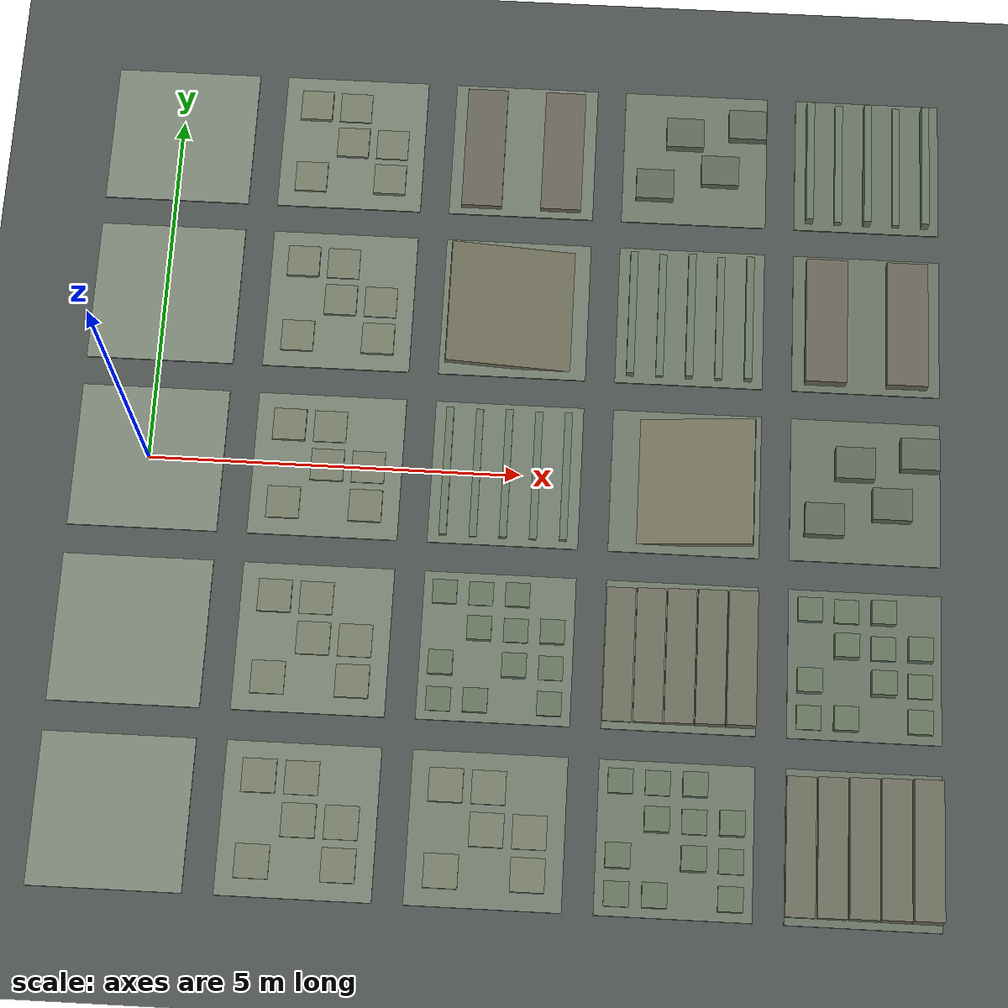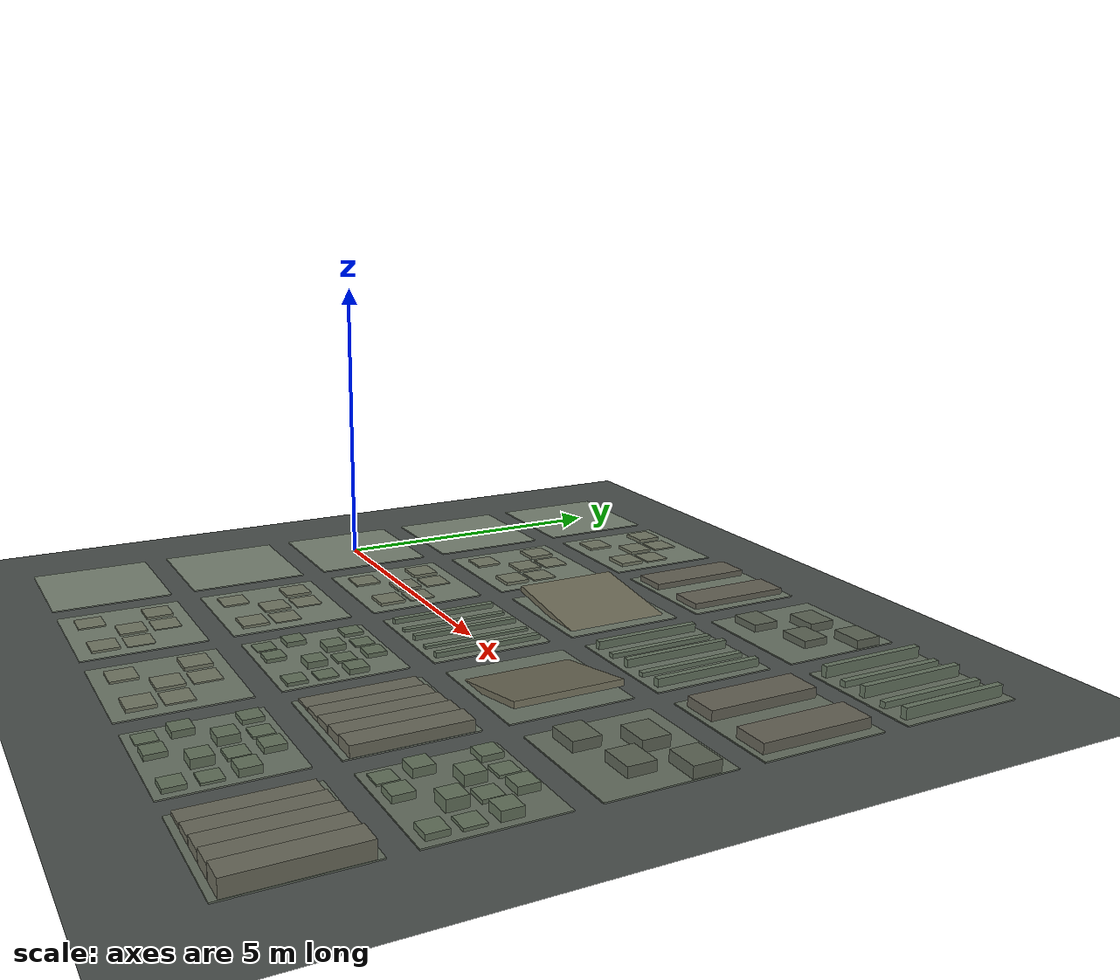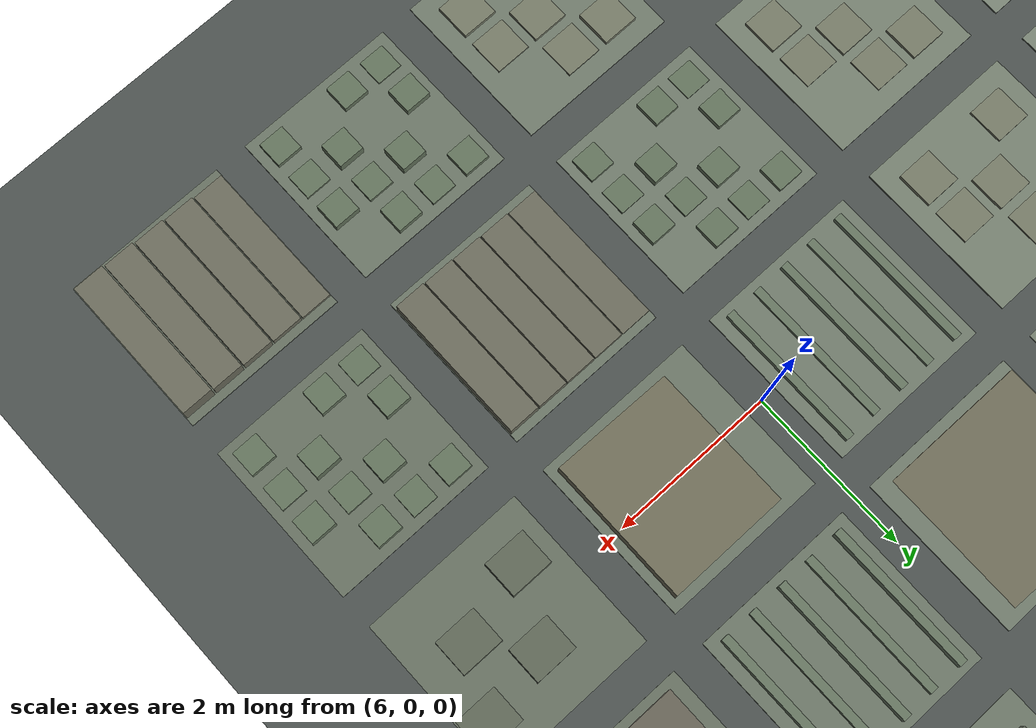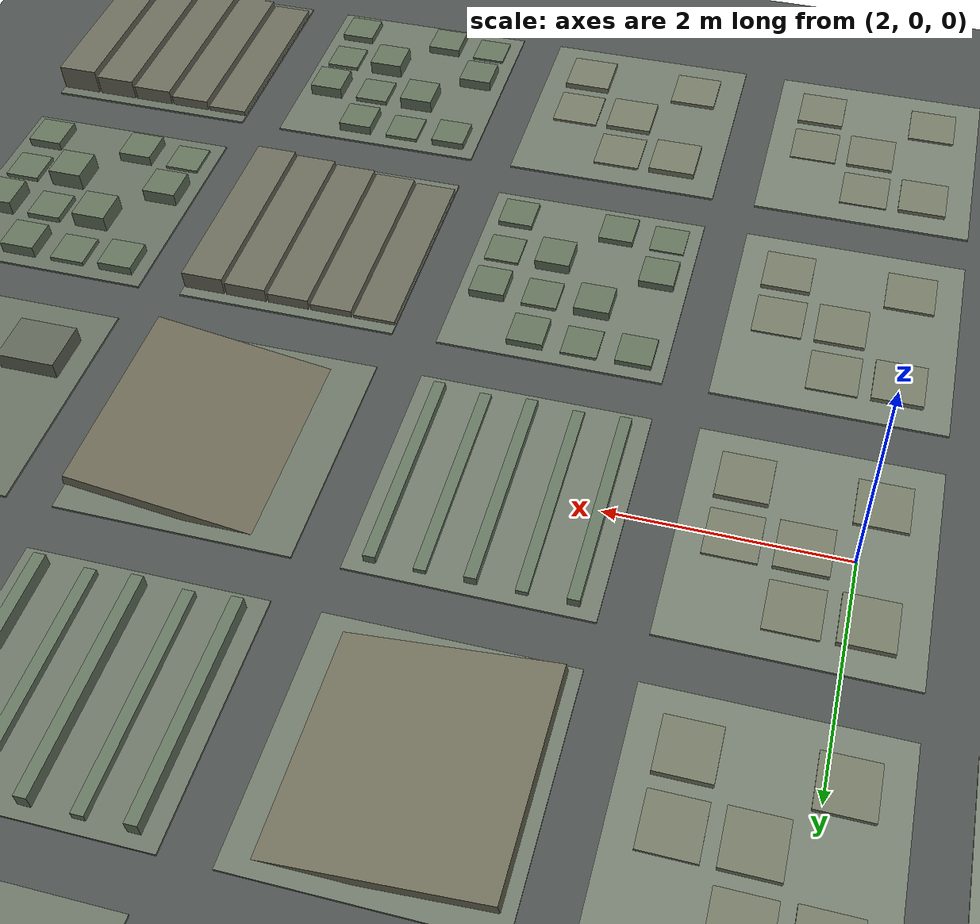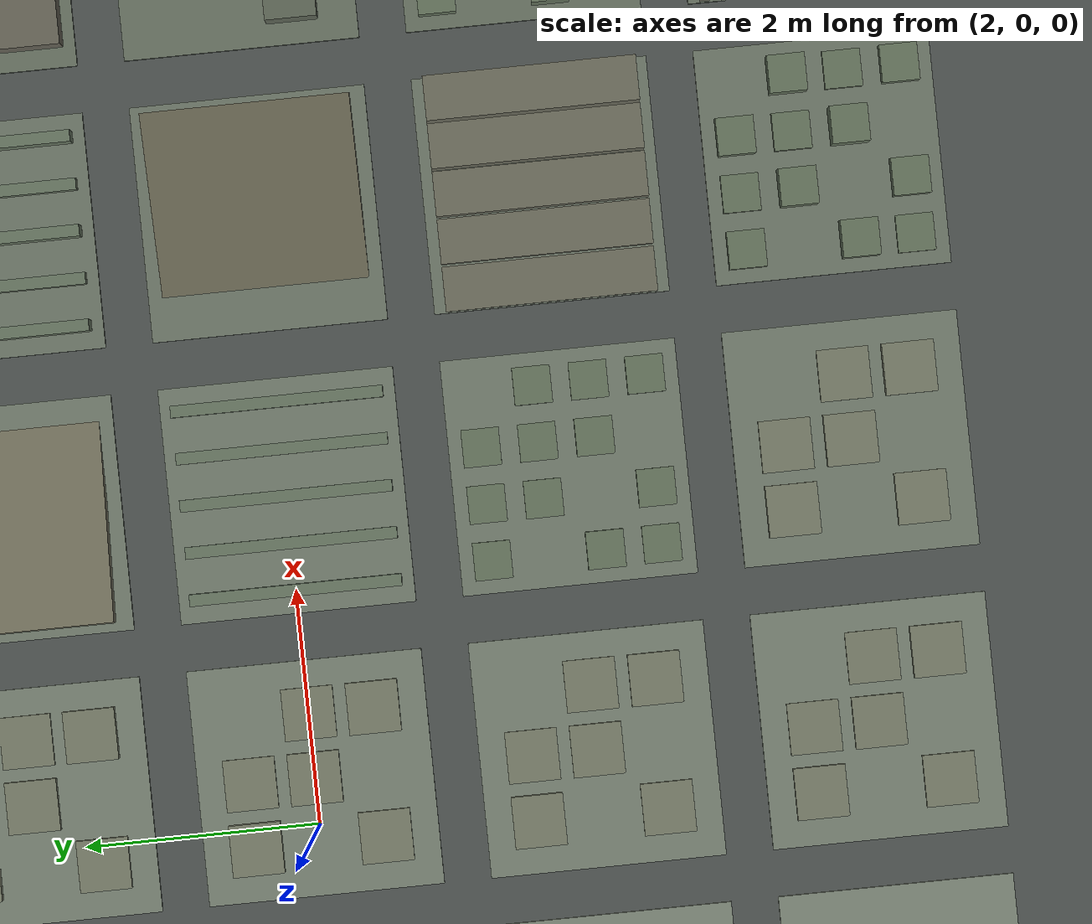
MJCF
<?xml version='1.0' encoding='utf-8'?>
<mujoco model="mjlab_rough_5x5_terrain">
  <option gravity="0 0 -9.81" timestep="0.005" />
  <asset>
    <material name="tile_mat" rgba="0.45 0.47 0.42 1" />
    <material name="floor_mat" rgba="0.30 0.32 0.31 1" />
  </asset>
  <worldbody>
    <light name="terrain_light" pos="3 -4 8" dir="-0.4 0.4 -1" diffuse="0.8 0.8 0.8" specular="0.2 0.2 0.2" />
    <geom name="terrain_floor" type="plane" pos="4.8 0 0" size="9 8 0.02" friction="0.9 0.005 0.0001" contype="1" conaffinity="1" material="floor_mat" />
    <geom name="terrain_r0_c0_base" type="box" pos="0 -4.8 0.01" size="1 1 0.01" friction="0.9 0.005 0.0001" contype="1" conaffinity="1" material="tile_mat" rgba="0.48 0.52 0.46 1" />
    <geom name="terrain_r0_c1_base" type="box" pos="0 -2.4 0.01" size="1 1 0.01" friction="0.9 0.005 0.0001" contype="1" conaffinity="1" material="tile_mat" rgba="0.48 0.52 0.46 1" />
    <geom name="terrain_r0_c2_base" type="box" pos="0 0 0.01" size="1 1 0.01" friction="0.9 0.005 0.0001" contype="1" conaffinity="1" material="tile_mat" rgba="0.48 0.52 0.46 1" />
    <geom name="terrain_r0_c3_base" type="box" pos="0 2.4 0.01" size="1 1 0.01" friction="0.9 0.005 0.0001" contype="1" conaffinity="1" material="tile_mat" rgba="0.48 0.52 0.46 1" />
    <geom name="terrain_r0_c4_base" type="box" pos="0 4.8 0.01" size="1 1 0.01" friction="0.9 0.005 0.0001" contype="1" conaffinity="1" material="tile_mat" rgba="0.48 0.52 0.46 1" />
    <geom name="terrain_r1_c0_base" type="box" pos="2.4 -4.8 0.01" size="1 1 0.01" friction="0.9 0.005 0.0001" contype="1" conaffinity="1" material="tile_mat" rgba="0.46 0.50 0.44 1" />
    <geom name="terrain_r1_c1_base" type="box" pos="2.4 -2.4 0.01" size="1 1 0.01" friction="0.9 0.005 0.0001" contype="1" conaffinity="1" material="tile_mat" rgba="0.46 0.50 0.44 1" />
    <geom name="terrain_r1_c2_base" type="box" pos="2.4 0 0.01" size="1 1 0.01" friction="0.9 0.005 0.0001" contype="1" conaffinity="1" material="tile_mat" rgba="0.46 0.50 0.44 1" />
    <geom name="terrain_r1_c3_base" type="box" pos="2.4 2.4 0.01" size="1 1 0.01" friction="0.9 0.005 0.0001" contype="1" conaffinity="1" material="tile_mat" rgba="0.46 0.50 0.44 1" />
    <geom name="terrain_r1_c4_base" type="box" pos="2.4 4.8 0.01" size="1 1 0.01" friction="0.9 0.005 0.0001" contype="1" conaffinity="1" material="tile_mat" rgba="0.46 0.50 0.44 1" />
    <geom name="terrain_r2_c0_base" type="box" pos="4.8 -4.8 0.01" size="1 1 0.01" friction="0.9 0.005 0.0001" contype="1" conaffinity="1" material="tile_mat" rgba="0.44 0.48 0.42 1" />
    <geom name="terrain_r2_c1_base" type="box" pos="4.8 -2.4 0.01" size="1 1 0.01" friction="0.9 0.005 0.0001" contype="1" conaffinity="1" material="tile_mat" rgba="0.44 0.48 0.42 1" />
    <geom name="terrain_r2_c2_base" type="box" pos="4.8 0 0.01" size="1 1 0.01" friction="0.9 0.005 0.0001" contype="1" conaffinity="1" material="tile_mat" rgba="0.44 0.48 0.42 1" />
    <geom name="terrain_r2_c3_base" type="box" pos="4.8 2.4 0.01" size="1 1 0.01" friction="0.9 0.005 0.0001" contype="1" conaffinity="1" material="tile_mat" rgba="0.44 0.48 0.42 1" />
    <geom name="terrain_r2_c4_base" type="box" pos="4.8 4.8 0.01" size="1 1 0.01" friction="0.9 0.005 0.0001" contype="1" conaffinity="1" material="tile_mat" rgba="0.44 0.48 0.42 1" />
    <geom name="terrain_r3_c0_base" type="box" pos="7.2 -4.8 0.01" size="1 1 0.01" friction="0.9 0.005 0.0001" contype="1" conaffinity="1" material="tile_mat" rgba="0.42 0.46 0.40 1" />
    <geom name="terrain_r3_c1_base" type="box" pos="7.2 -2.4 0.01" size="1 1 0.01" friction="0.9 0.005 0.0001" contype="1" conaffinity="1" material="tile_mat" rgba="0.42 0.46 0.40 1" />
    <geom name="terrain_r3_c2_base" type="box" pos="7.2 0 0.01" size="1 1 0.01" friction="0.9 0.005 0.0001" contype="1" conaffinity="1" material="tile_mat" rgba="0.42 0.46 0.40 1" />
    <geom name="terrain_r3_c3_base" type="box" pos="7.2 2.4 0.01" size="1 1 0.01" friction="0.9 0.005 0.0001" contype="1" conaffinity="1" material="tile_mat" rgba="0.42 0.46 0.40 1" />
    <geom name="terrain_r3_c4_base" type="box" pos="7.2 4.8 0.01" size="1 1 0.01" friction="0.9 0.005 0.0001" contype="1" conaffinity="1" material="tile_mat" rgba="0.42 0.46 0.40 1" />
    <geom name="terrain_r4_c0_base" type="box" pos="9.6 -4.8 0.01" size="1 1 0.01" friction="0.9 0.005 0.0001" contype="1" conaffinity="1" material="tile_mat" rgba="0.40 0.44 0.38 1" />
    <geom name="terrain_r4_c1_base" type="box" pos="9.6 -2.4 0.01" size="1 1 0.01" friction="0.9 0.005 0.0001" contype="1" conaffinity="1" material="tile_mat" rgba="0.40 0.44 0.38 1" />
    <geom name="terrain_r4_c2_base" type="box" pos="9.6 0 0.01" size="1 1 0.01" friction="0.9 0.005 0.0001" contype="1" conaffinity="1" material="tile_mat" rgba="0.40 0.44 0.38 1" />
    <geom name="terrain_r4_c3_base" type="box" pos="9.6 2.4 0.01" size="1 1 0.01" friction="0.9 0.005 0.0001" contype="1" conaffinity="1" material="tile_mat" rgba="0.40 0.44 0.38 1" />
    <geom name="terrain_r4_c4_base" type="box" pos="9.6 4.8 0.01" size="1 1 0.01" friction="0.9 0.005 0.0001" contype="1" conaffinity="1" material="tile_mat" rgba="0.40 0.44 0.38 1" />
    <geom name="terrain_r1_c0_low_block_0_0" type="box" pos="1.85 -5.35 0.03125" size="0.22 0.22 0.01125" friction="0.9 0.005 0.0001" contype="1" conaffinity="1" material="tile_mat" rgba="0.46 0.48 0.40 1" />
    <geom name="terrain_r1_c0_low_block_0_2" type="box" pos="1.85 -4.25 0.03875" size="0.22 0.22 0.01875" friction="0.9 0.005 0.0001" contype="1" conaffinity="1" material="tile_mat" rgba="0.46 0.48 0.40 1" />
    <geom name="terrain_r1_c0_low_block_1_1" type="box" pos="2.4 -4.8 0.035" size="0.22 0.22 0.015" friction="0.9 0.005 0.0001" contype="1" conaffinity="1" material="tile_mat" rgba="0.46 0.48 0.40 1" />
    <geom name="terrain_r1_c0_low_block_1_2" type="box" pos="2.4 -4.25 0.0275" size="0.22 0.22 0.0075" friction="0.9 0.005 0.0001" contype="1" conaffinity="1" material="tile_mat" rgba="0.46 0.48 0.40 1" />
    <geom name="terrain_r1_c0_low_block_2_0" type="box" pos="2.95 -5.35 0.03875" size="0.22 0.22 0.01875" friction="0.9 0.005 0.0001" contype="1" conaffinity="1" material="tile_mat" rgba="0.46 0.48 0.40 1" />
    <geom name="terrain_r1_c0_low_block_2_1" type="box" pos="2.95 -4.8 0.0275" size="0.22 0.22 0.0075" friction="0.9 0.005 0.0001" contype="1" conaffinity="1" material="tile_mat" rgba="0.46 0.48 0.40 1" />
    <geom name="terrain_r1_c1_low_block_0_0" type="box" pos="1.85 -2.95 0.03305" size="0.22 0.22 0.01305" friction="0.9 0.005 0.0001" contype="1" conaffinity="1" material="tile_mat" rgba="0.46 0.48 0.40 1" />
    <geom name="terrain_r1_c1_low_block_0_2" type="box" pos="1.85 -1.85 0.04175" size="0.22 0.22 0.02175" friction="0.9 0.005 0.0001" contype="1" conaffinity="1" material="tile_mat" rgba="0.46 0.48 0.40 1" />
    <geom name="terrain_r1_c1_low_block_1_1" type="box" pos="2.4 -2.4 0.0374" size="0.22 0.22 0.0174" friction="0.9 0.005 0.0001" contype="1" conaffinity="1" material="tile_mat" rgba="0.46 0.48 0.40 1" />
    <geom name="terrain_r1_c1_low_block_1_2" type="box" pos="2.4 -1.85 0.0287" size="0.22 0.22 0.0087" friction="0.9 0.005 0.0001" contype="1" conaffinity="1" material="tile_mat" rgba="0.46 0.48 0.40 1" />
    <geom name="terrain_r1_c1_low_block_2_0" type="box" pos="2.95 -2.95 0.04175" size="0.22 0.22 0.02175" friction="0.9 0.005 0.0001" contype="1" conaffinity="1" material="tile_mat" rgba="0.46 0.48 0.40 1" />
    <geom name="terrain_r1_c1_low_block_2_1" type="box" pos="2.95 -2.4 0.0287" size="0.22 0.22 0.0087" friction="0.9 0.005 0.0001" contype="1" conaffinity="1" material="tile_mat" rgba="0.46 0.48 0.40 1" />
    <geom name="terrain_r1_c2_low_block_0_0" type="box" pos="1.85 -0.55 0.03485" size="0.22 0.22 0.01485" friction="0.9 0.005 0.0001" contype="1" conaffinity="1" material="tile_mat" rgba="0.46 0.48 0.40 1" />
    <geom name="terrain_r1_c2_low_block_0_2" type="box" pos="1.85 0.55 0.04475" size="0.22 0.22 0.02475" friction="0.9 0.005 0.0001" contype="1" conaffinity="1" material="tile_mat" rgba="0.46 0.48 0.40 1" />
    <geom name="terrain_r1_c2_low_block_1_1" type="box" pos="2.4 0 0.0398" size="0.22 0.22 0.0198" friction="0.9 0.005 0.0001" contype="1" conaffinity="1" material="tile_mat" rgba="0.46 0.48 0.40 1" />
    <geom name="terrain_r1_c2_low_block_1_2" type="box" pos="2.4 0.55 0.0299" size="0.22 0.22 0.0099" friction="0.9 0.005 0.0001" contype="1" conaffinity="1" material="tile_mat" rgba="0.46 0.48 0.40 1" />
    <geom name="terrain_r1_c2_low_block_2_0" type="box" pos="2.95 -0.55 0.04475" size="0.22 0.22 0.02475" friction="0.9 0.005 0.0001" contype="1" conaffinity="1" material="tile_mat" rgba="0.46 0.48 0.40 1" />
    <geom name="terrain_r1_c2_low_block_2_1" type="box" pos="2.95 0 0.0299" size="0.22 0.22 0.0099" friction="0.9 0.005 0.0001" contype="1" conaffinity="1" material="tile_mat" rgba="0.46 0.48 0.40 1" />
    <geom name="terrain_r1_c3_low_block_0_0" type="box" pos="1.85 1.85 0.03665" size="0.22 0.22 0.01665" friction="0.9 0.005 0.0001" contype="1" conaffinity="1" material="tile_mat" rgba="0.46 0.48 0.40 1" />
    <geom name="terrain_r1_c3_low_block_0_2" type="box" pos="1.85 2.95 0.04775" size="0.22 0.22 0.02775" friction="0.9 0.005 0.0001" contype="1" conaffinity="1" material="tile_mat" rgba="0.46 0.48 0.40 1" />
    <geom name="terrain_r1_c3_low_block_1_1" type="box" pos="2.4 2.4 0.0422" size="0.22 0.22 0.0222" friction="0.9 0.005 0.0001" contype="1" conaffinity="1" material="tile_mat" rgba="0.46 0.48 0.40 1" />
    <geom name="terrain_r1_c3_low_block_1_2" type="box" pos="2.4 2.95 0.0311" size="0.22 0.22 0.0111" friction="0.9 0.005 0.0001" contype="1" conaffinity="1" material="tile_mat" rgba="0.46 0.48 0.40 1" />
    <geom name="terrain_r1_c3_low_block_2_0" type="box" pos="2.95 1.85 0.04775" size="0.22 0.22 0.02775" friction="0.9 0.005 0.0001" contype="1" conaffinity="1" material="tile_mat" rgba="0.46 0.48 0.40 1" />
    <geom name="terrain_r1_c3_low_block_2_1" type="box" pos="2.95 2.4 0.0311" size="0.22 0.22 0.0111" friction="0.9 0.005 0.0001" contype="1" conaffinity="1" material="tile_mat" rgba="0.46 0.48 0.40 1" />
    <geom name="terrain_r1_c4_low_block_0_0" type="box" pos="1.85 4.25 0.03845" size="0.22 0.22 0.01845" friction="0.9 0.005 0.0001" contype="1" conaffinity="1" material="tile_mat" rgba="0.46 0.48 0.40 1" />
    <geom name="terrain_r1_c4_low_block_0_2" type="box" pos="1.85 5.35 0.05075" size="0.22 0.22 0.03075" friction="0.9 0.005 0.0001" contype="1" conaffinity="1" material="tile_mat" rgba="0.46 0.48 0.40 1" />
    <geom name="terrain_r1_c4_low_block_1_1" type="box" pos="2.4 4.8 0.0446" size="0.22 0.22 0.0246" friction="0.9 0.005 0.0001" contype="1" conaffinity="1" material="tile_mat" rgba="0.46 0.48 0.40 1" />
    <geom name="terrain_r1_c4_low_block_1_2" type="box" pos="2.4 5.35 0.0323" size="0.22 0.22 0.0123" friction="0.9 0.005 0.0001" contype="1" conaffinity="1" material="tile_mat" rgba="0.46 0.48 0.40 1" />
    <geom name="terrain_r1_c4_low_block_2_0" type="box" pos="2.95 4.25 0.05075" size="0.22 0.22 0.03075" friction="0.9 0.005 0.0001" contype="1" conaffinity="1" material="tile_mat" rgba="0.46 0.48 0.40 1" />
    <geom name="terrain_r1_c4_low_block_2_1" type="box" pos="2.95 4.8 0.0323" size="0.22 0.22 0.0123" friction="0.9 0.005 0.0001" contype="1" conaffinity="1" material="tile_mat" rgba="0.46 0.48 0.40 1" />
    <geom name="terrain_r2_c0_low_block_0_0" type="box" pos="4.25 -5.35 0.03725" size="0.22 0.22 0.01725" friction="0.9 0.005 0.0001" contype="1" conaffinity="1" material="tile_mat" rgba="0.46 0.48 0.40 1" />
    <geom name="terrain_r2_c0_low_block_0_2" type="box" pos="4.25 -4.25 0.04875" size="0.22 0.22 0.02875" friction="0.9 0.005 0.0001" contype="1" conaffinity="1" material="tile_mat" rgba="0.46 0.48 0.40 1" />
    <geom name="terrain_r2_c0_low_block_1_1" type="box" pos="4.8 -4.8 0.043" size="0.22 0.22 0.023" friction="0.9 0.005 0.0001" contype="1" conaffinity="1" material="tile_mat" rgba="0.46 0.48 0.40 1" />
    <geom name="terrain_r2_c0_low_block_1_2" type="box" pos="4.8 -4.25 0.0315" size="0.22 0.22 0.0115" friction="0.9 0.005 0.0001" contype="1" conaffinity="1" material="tile_mat" rgba="0.46 0.48 0.40 1" />
    <geom name="terrain_r2_c0_low_block_2_0" type="box" pos="5.35 -5.35 0.04875" size="0.22 0.22 0.02875" friction="0.9 0.005 0.0001" contype="1" conaffinity="1" material="tile_mat" rgba="0.46 0.48 0.40 1" />
    <geom name="terrain_r2_c0_low_block_2_1" type="box" pos="5.35 -4.8 0.0315" size="0.22 0.22 0.0115" friction="0.9 0.005 0.0001" contype="1" conaffinity="1" material="tile_mat" rgba="0.46 0.48 0.40 1" />
    <geom name="terrain_r2_c1_rough_block_0_0" type="box" pos="4.08 -3.12 0.0285" size="0.16 0.16 0.0085" friction="0.9 0.005 0.0001" contype="1" conaffinity="1" material="tile_mat" rgba="0.39 0.45 0.36 1" />
    <geom name="terrain_r2_c1_rough_block_0_1" type="box" pos="4.08 -2.64 0.05825" size="0.16 0.16 0.03825" friction="0.9 0.005 0.0001" contype="1" conaffinity="1" material="tile_mat" rgba="0.39 0.45 0.36 1" />
    <geom name="terrain_r2_c1_rough_block_0_3" type="box" pos="4.08 -1.68 0.0455" size="0.16 0.16 0.0255" friction="0.9 0.005 0.0001" contype="1" conaffinity="1" material="tile_mat" rgba="0.39 0.45 0.36 1" />
    <geom name="terrain_r2_c1_rough_block_1_0" type="box" pos="4.56 -3.12 0.04975" size="0.16 0.16 0.02975" friction="0.9 0.005 0.0001" contype="1" conaffinity="1" material="tile_mat" rgba="0.39 0.45 0.36 1" />
    <geom name="terrain_r2_c1_rough_block_1_2" type="box" pos="4.56 -2.16 0.06675" size="0.16 0.16 0.04675" friction="0.9 0.005 0.0001" contype="1" conaffinity="1" material="tile_mat" rgba="0.39 0.45 0.36 1" />
    <geom name="terrain_r2_c1_rough_block_1_3" type="box" pos="4.56 -1.68 0.03275" size="0.16 0.16 0.01275" friction="0.9 0.005 0.0001" contype="1" conaffinity="1" material="tile_mat" rgba="0.39 0.45 0.36 1" />
    <geom name="terrain_r2_c1_rough_block_2_1" type="box" pos="5.04 -2.64 0.071" size="0.16 0.16 0.051" friction="0.9 0.005 0.0001" contype="1" conaffinity="1" material="tile_mat" rgba="0.39 0.45 0.36 1" />
    <geom name="terrain_r2_c1_rough_block_2_2" type="box" pos="5.04 -2.16 0.037" size="0.16 0.16 0.017" friction="0.9 0.005 0.0001" contype="1" conaffinity="1" material="tile_mat" rgba="0.39 0.45 0.36 1" />
    <geom name="terrain_r2_c1_rough_block_2_3" type="box" pos="5.04 -1.68 0.054" size="0.16 0.16 0.034" friction="0.9 0.005 0.0001" contype="1" conaffinity="1" material="tile_mat" rgba="0.39 0.45 0.36 1" />
    <geom name="terrain_r2_c1_rough_block_3_0" type="box" pos="5.52 -3.12 0.0455" size="0.16 0.16 0.0255" friction="0.9 0.005 0.0001" contype="1" conaffinity="1" material="tile_mat" rgba="0.39 0.45 0.36 1" />
    <geom name="terrain_r2_c1_rough_block_3_1" type="box" pos="5.52 -2.64 0.03275" size="0.16 0.16 0.01275" friction="0.9 0.005 0.0001" contype="1" conaffinity="1" material="tile_mat" rgba="0.39 0.45 0.36 1" />
    <geom name="terrain_r2_c1_rough_block_3_2" type="box" pos="5.52 -2.16 0.0625" size="0.16 0.16 0.0425" friction="0.9 0.005 0.0001" contype="1" conaffinity="1" material="tile_mat" rgba="0.39 0.45 0.36 1" />
    <geom name="terrain_r2_c2_wave_0" type="box" pos="4 0 0.06" size="0.05 0.9 0.04" friction="0.9 0.005 0.0001" contype="1" conaffinity="1" material="tile_mat" rgba="0.40 0.46 0.38 1" />
    <geom name="terrain_r2_c2_wave_1" type="box" pos="4.4 0 0.042" size="0.05 0.9 0.022" friction="0.9 0.005 0.0001" contype="1" conaffinity="1" material="tile_mat" rgba="0.40 0.46 0.38 1" />
    <geom name="terrain_r2_c2_wave_2" type="box" pos="4.8 0 0.06" size="0.05 0.9 0.04" friction="0.9 0.005 0.0001" contype="1" conaffinity="1" material="tile_mat" rgba="0.40 0.46 0.38 1" />
    <geom name="terrain_r2_c2_wave_3" type="box" pos="5.2 0 0.042" size="0.05 0.9 0.022" friction="0.9 0.005 0.0001" contype="1" conaffinity="1" material="tile_mat" rgba="0.40 0.46 0.38 1" />
    <geom name="terrain_r2_c2_wave_4" type="box" pos="5.6 0 0.06" size="0.05 0.9 0.04" friction="0.9 0.005 0.0001" contype="1" conaffinity="1" material="tile_mat" rgba="0.40 0.46 0.38 1" />
    <geom name="terrain_r2_c3_ramp" type="box" pos="4.8 2.4 0.08" size="0.92 0.88 0.05" friction="0.9 0.005 0.0001" contype="1" conaffinity="1" material="tile_mat" rgba="0.44 0.43 0.35 1" quat="0.997564 0 0.0697565 0" />
    <geom name="terrain_r2_c4_gap_left" type="box" pos="4.25 4.8 0.07" size="0.28 0.9 0.05" friction="0.9 0.005 0.0001" contype="1" conaffinity="1" material="tile_mat" rgba="0.40 0.39 0.34 1" />
    <geom name="terrain_r2_c4_gap_right" type="box" pos="5.35 4.8 0.07" size="0.28 0.9 0.05" friction="0.9 0.005 0.0001" contype="1" conaffinity="1" material="tile_mat" rgba="0.40 0.39 0.34 1" />
    <geom name="terrain_r3_c0_rough_block_0_0" type="box" pos="6.48 -5.52 0.0315" size="0.16 0.16 0.0115" friction="0.9 0.005 0.0001" contype="1" conaffinity="1" material="tile_mat" rgba="0.39 0.45 0.36 1" />
    <geom name="terrain_r3_c0_rough_block_0_1" type="box" pos="6.48 -5.04 0.07175" size="0.16 0.16 0.05175" friction="0.9 0.005 0.0001" contype="1" conaffinity="1" material="tile_mat" rgba="0.39 0.45 0.36 1" />
    <geom name="terrain_r3_c0_rough_block_0_3" type="box" pos="6.48 -4.08 0.0545" size="0.16 0.16 0.0345" friction="0.9 0.005 0.0001" contype="1" conaffinity="1" material="tile_mat" rgba="0.39 0.45 0.36 1" />
    <geom name="terrain_r3_c0_rough_block_1_0" type="box" pos="6.96 -5.52 0.06025" size="0.16 0.16 0.04025" friction="0.9 0.005 0.0001" contype="1" conaffinity="1" material="tile_mat" rgba="0.39 0.45 0.36 1" />
    <geom name="terrain_r3_c0_rough_block_1_2" type="box" pos="6.96 -4.56 0.08325" size="0.16 0.16 0.06325" friction="0.9 0.005 0.0001" contype="1" conaffinity="1" material="tile_mat" rgba="0.39 0.45 0.36 1" />
    <geom name="terrain_r3_c0_rough_block_1_3" type="box" pos="6.96 -4.08 0.03725" size="0.16 0.16 0.01725" friction="0.9 0.005 0.0001" contype="1" conaffinity="1" material="tile_mat" rgba="0.39 0.45 0.36 1" />
    <geom name="terrain_r3_c0_rough_block_2_1" type="box" pos="7.44 -5.04 0.089" size="0.16 0.16 0.069" friction="0.9 0.005 0.0001" contype="1" conaffinity="1" material="tile_mat" rgba="0.39 0.45 0.36 1" />
    <geom name="terrain_r3_c0_rough_block_2_2" type="box" pos="7.44 -4.56 0.043" size="0.16 0.16 0.023" friction="0.9 0.005 0.0001" contype="1" conaffinity="1" material="tile_mat" rgba="0.39 0.45 0.36 1" />
    <geom name="terrain_r3_c0_rough_block_2_3" type="box" pos="7.44 -4.08 0.066" size="0.16 0.16 0.046" friction="0.9 0.005 0.0001" contype="1" conaffinity="1" material="tile_mat" rgba="0.39 0.45 0.36 1" />
    <geom name="terrain_r3_c0_rough_block_3_0" type="box" pos="7.92 -5.52 0.0545" size="0.16 0.16 0.0345" friction="0.9 0.005 0.0001" contype="1" conaffinity="1" material="tile_mat" rgba="0.39 0.45 0.36 1" />
    <geom name="terrain_r3_c0_rough_block_3_1" type="box" pos="7.92 -5.04 0.03725" size="0.16 0.16 0.01725" friction="0.9 0.005 0.0001" contype="1" conaffinity="1" material="tile_mat" rgba="0.39 0.45 0.36 1" />
    <geom name="terrain_r3_c0_rough_block_3_2" type="box" pos="7.92 -4.56 0.0775" size="0.16 0.16 0.0575" friction="0.9 0.005 0.0001" contype="1" conaffinity="1" material="tile_mat" rgba="0.39 0.45 0.36 1" />
    <geom name="terrain_r3_c1_stair_0" type="box" pos="6.4 -2.4 0.0375" size="0.19 0.9 0.0175" friction="0.9 0.005 0.0001" contype="1" conaffinity="1" material="tile_mat" rgba="0.42 0.42 0.36 1" />
    <geom name="terrain_r3_c1_stair_1" type="box" pos="6.8 -2.4 0.055" size="0.19 0.9 0.035" friction="0.9 0.005 0.0001" contype="1" conaffinity="1" material="tile_mat" rgba="0.42 0.42 0.36 1" />
    <geom name="terrain_r3_c1_stair_2" type="box" pos="7.2 -2.4 0.0725" size="0.19 0.9 0.0525" friction="0.9 0.005 0.0001" contype="1" conaffinity="1" material="tile_mat" rgba="0.42 0.42 0.36 1" />
    <geom name="terrain_r3_c1_stair_3" type="box" pos="7.6 -2.4 0.09" size="0.19 0.9 0.07" friction="0.9 0.005 0.0001" contype="1" conaffinity="1" material="tile_mat" rgba="0.42 0.42 0.36 1" />
    <geom name="terrain_r3_c1_stair_4" type="box" pos="8 -2.4 0.1075" size="0.19 0.9 0.0875" friction="0.9 0.005 0.0001" contype="1" conaffinity="1" material="tile_mat" rgba="0.42 0.42 0.36 1" />
    <geom name="terrain_r3_c2_ramp" type="box" pos="7.2 0 0.08" size="0.92 0.88 0.05" friction="0.9 0.005 0.0001" contype="1" conaffinity="1" material="tile_mat" rgba="0.44 0.43 0.35 1" quat="0.996195 0 -0.0871557 0" />
    <geom name="terrain_r3_c3_wave_0" type="box" pos="6.4 2.4 0.085" size="0.05 0.9 0.065" friction="0.9 0.005 0.0001" contype="1" conaffinity="1" material="tile_mat" rgba="0.40 0.46 0.38 1" />
    <geom name="terrain_r3_c3_wave_1" type="box" pos="6.8 2.4 0.05575" size="0.05 0.9 0.03575" friction="0.9 0.005 0.0001" contype="1" conaffinity="1" material="tile_mat" rgba="0.40 0.46 0.38 1" />
    <geom name="terrain_r3_c3_wave_2" type="box" pos="7.2 2.4 0.085" size="0.05 0.9 0.065" friction="0.9 0.005 0.0001" contype="1" conaffinity="1" material="tile_mat" rgba="0.40 0.46 0.38 1" />
    <geom name="terrain_r3_c3_wave_3" type="box" pos="7.6 2.4 0.05575" size="0.05 0.9 0.03575" friction="0.9 0.005 0.0001" contype="1" conaffinity="1" material="tile_mat" rgba="0.40 0.46 0.38 1" />
    <geom name="terrain_r3_c3_wave_4" type="box" pos="8 2.4 0.085" size="0.05 0.9 0.065" friction="0.9 0.005 0.0001" contype="1" conaffinity="1" material="tile_mat" rgba="0.40 0.46 0.38 1" />
    <geom name="terrain_r3_c4_stone_0" type="box" pos="6.65 4.35 0.08" size="0.26 0.22 0.06" friction="0.9 0.005 0.0001" contype="1" conaffinity="1" material="tile_mat" rgba="0.37 0.40 0.34 1" />
    <geom name="terrain_r3_c4_stone_1" type="box" pos="7.05 5.15 0.09" size="0.26 0.22 0.07" friction="0.9 0.005 0.0001" contype="1" conaffinity="1" material="tile_mat" rgba="0.37 0.40 0.34 1" />
    <geom name="terrain_r3_c4_stone_2" type="box" pos="7.55 4.6 0.08" size="0.26 0.22 0.06" friction="0.9 0.005 0.0001" contype="1" conaffinity="1" material="tile_mat" rgba="0.37 0.40 0.34 1" />
    <geom name="terrain_r3_c4_stone_3" type="box" pos="7.92 5.32 0.09" size="0.26 0.22 0.07" friction="0.9 0.005 0.0001" contype="1" conaffinity="1" material="tile_mat" rgba="0.37 0.40 0.34 1" />
    <geom name="terrain_r4_c0_stair_0" type="box" pos="8.8 -4.8 0.045" size="0.19 0.9 0.025" friction="0.9 0.005 0.0001" contype="1" conaffinity="1" material="tile_mat" rgba="0.42 0.42 0.36 1" />
    <geom name="terrain_r4_c0_stair_1" type="box" pos="9.2 -4.8 0.07" size="0.19 0.9 0.05" friction="0.9 0.005 0.0001" contype="1" conaffinity="1" material="tile_mat" rgba="0.42 0.42 0.36 1" />
    <geom name="terrain_r4_c0_stair_2" type="box" pos="9.6 -4.8 0.095" size="0.19 0.9 0.075" friction="0.9 0.005 0.0001" contype="1" conaffinity="1" material="tile_mat" rgba="0.42 0.42 0.36 1" />
    <geom name="terrain_r4_c0_stair_3" type="box" pos="10 -4.8 0.12" size="0.19 0.9 0.1" friction="0.9 0.005 0.0001" contype="1" conaffinity="1" material="tile_mat" rgba="0.42 0.42 0.36 1" />
    <geom name="terrain_r4_c0_stair_4" type="box" pos="10.4 -4.8 0.145" size="0.19 0.9 0.125" friction="0.9 0.005 0.0001" contype="1" conaffinity="1" material="tile_mat" rgba="0.42 0.42 0.36 1" />
    <geom name="terrain_r4_c1_rough_block_0_0" type="box" pos="8.88 -3.12 0.0345" size="0.16 0.16 0.0145" friction="0.9 0.005 0.0001" contype="1" conaffinity="1" material="tile_mat" rgba="0.39 0.45 0.36 1" />
    <geom name="terrain_r4_c1_rough_block_0_1" type="box" pos="8.88 -2.64 0.08525" size="0.16 0.16 0.06525" friction="0.9 0.005 0.0001" contype="1" conaffinity="1" material="tile_mat" rgba="0.39 0.45 0.36 1" />
    <geom name="terrain_r4_c1_rough_block_0_3" type="box" pos="8.88 -1.68 0.0635" size="0.16 0.16 0.0435" friction="0.9 0.005 0.0001" contype="1" conaffinity="1" material="tile_mat" rgba="0.39 0.45 0.36 1" />
    <geom name="terrain_r4_c1_rough_block_1_0" type="box" pos="9.36 -3.12 0.07075" size="0.16 0.16 0.05075" friction="0.9 0.005 0.0001" contype="1" conaffinity="1" material="tile_mat" rgba="0.39 0.45 0.36 1" />
    <geom name="terrain_r4_c1_rough_block_1_2" type="box" pos="9.36 -2.16 0.09975" size="0.16 0.16 0.07975" friction="0.9 0.005 0.0001" contype="1" conaffinity="1" material="tile_mat" rgba="0.39 0.45 0.36 1" />
    <geom name="terrain_r4_c1_rough_block_1_3" type="box" pos="9.36 -1.68 0.04175" size="0.16 0.16 0.02175" friction="0.9 0.005 0.0001" contype="1" conaffinity="1" material="tile_mat" rgba="0.39 0.45 0.36 1" />
    <geom name="terrain_r4_c1_rough_block_2_1" type="box" pos="9.84 -2.64 0.107" size="0.16 0.16 0.087" friction="0.9 0.005 0.0001" contype="1" conaffinity="1" material="tile_mat" rgba="0.39 0.45 0.36 1" />
    <geom name="terrain_r4_c1_rough_block_2_2" type="box" pos="9.84 -2.16 0.049" size="0.16 0.16 0.029" friction="0.9 0.005 0.0001" contype="1" conaffinity="1" material="tile_mat" rgba="0.39 0.45 0.36 1" />
    <geom name="terrain_r4_c1_rough_block_2_3" type="box" pos="9.84 -1.68 0.078" size="0.16 0.16 0.058" friction="0.9 0.005 0.0001" contype="1" conaffinity="1" material="tile_mat" rgba="0.39 0.45 0.36 1" />
    <geom name="terrain_r4_c1_rough_block_3_0" type="box" pos="10.32 -3.12 0.0635" size="0.16 0.16 0.0435" friction="0.9 0.005 0.0001" contype="1" conaffinity="1" material="tile_mat" rgba="0.39 0.45 0.36 1" />
    <geom name="terrain_r4_c1_rough_block_3_1" type="box" pos="10.32 -2.64 0.04175" size="0.16 0.16 0.02175" friction="0.9 0.005 0.0001" contype="1" conaffinity="1" material="tile_mat" rgba="0.39 0.45 0.36 1" />
    <geom name="terrain_r4_c1_rough_block_3_2" type="box" pos="10.32 -2.16 0.0925" size="0.16 0.16 0.0725" friction="0.9 0.005 0.0001" contype="1" conaffinity="1" material="tile_mat" rgba="0.39 0.45 0.36 1" />
    <geom name="terrain_r4_c2_stone_0" type="box" pos="9.05 -0.45 0.1" size="0.26 0.22 0.08" friction="0.9 0.005 0.0001" contype="1" conaffinity="1" material="tile_mat" rgba="0.37 0.40 0.34 1" />
    <geom name="terrain_r4_c2_stone_1" type="box" pos="9.45 0.35 0.11" size="0.26 0.22 0.09" friction="0.9 0.005 0.0001" contype="1" conaffinity="1" material="tile_mat" rgba="0.37 0.40 0.34 1" />
    <geom name="terrain_r4_c2_stone_2" type="box" pos="9.95 -0.2 0.1" size="0.26 0.22 0.08" friction="0.9 0.005 0.0001" contype="1" conaffinity="1" material="tile_mat" rgba="0.37 0.40 0.34 1" />
    <geom name="terrain_r4_c2_stone_3" type="box" pos="10.32 0.52 0.11" size="0.26 0.22 0.09" friction="0.9 0.005 0.0001" contype="1" conaffinity="1" material="tile_mat" rgba="0.37 0.40 0.34 1" />
    <geom name="terrain_r4_c3_gap_left" type="box" pos="9.05 2.4 0.1" size="0.28 0.9 0.08" friction="0.9 0.005 0.0001" contype="1" conaffinity="1" material="tile_mat" rgba="0.40 0.39 0.34 1" />
    <geom name="terrain_r4_c3_gap_right" type="box" pos="10.15 2.4 0.1" size="0.28 0.9 0.08" friction="0.9 0.005 0.0001" contype="1" conaffinity="1" material="tile_mat" rgba="0.40 0.39 0.34 1" />
    <geom name="terrain_r4_c4_wave_0" type="box" pos="8.8 4.8 0.11" size="0.05 0.9 0.09" friction="0.9 0.005 0.0001" contype="1" conaffinity="1" material="tile_mat" rgba="0.40 0.46 0.38 1" />
    <geom name="terrain_r4_c4_wave_1" type="box" pos="9.2 4.8 0.0695" size="0.05 0.9 0.0495" friction="0.9 0.005 0.0001" contype="1" conaffinity="1" material="tile_mat" rgba="0.40 0.46 0.38 1" />
    <geom name="terrain_r4_c4_wave_2" type="box" pos="9.6 4.8 0.11" size="0.05 0.9 0.09" friction="0.9 0.005 0.0001" contype="1" conaffinity="1" material="tile_mat" rgba="0.40 0.46 0.38 1" />
    <geom name="terrain_r4_c4_wave_3" type="box" pos="10 4.8 0.0695" size="0.05 0.9 0.0495" friction="0.9 0.005 0.0001" contype="1" conaffinity="1" material="tile_mat" rgba="0.40 0.46 0.38 1" />
    <geom name="terrain_r4_c4_wave_4" type="box" pos="10.4 4.8 0.11" size="0.05 0.9 0.09" friction="0.9 0.005 0.0001" contype="1" conaffinity="1" material="tile_mat" rgba="0.40 0.46 0.38 1" />
  </worldbody>
</mujoco>
